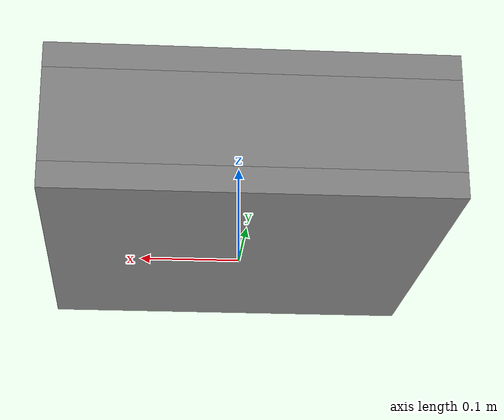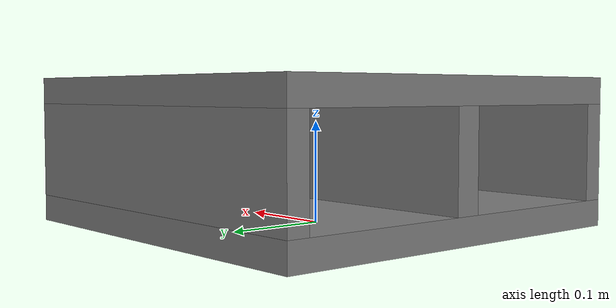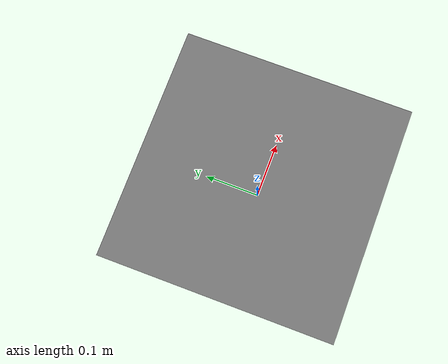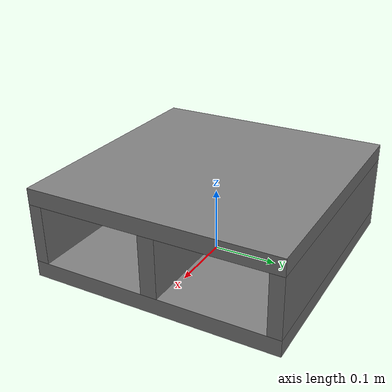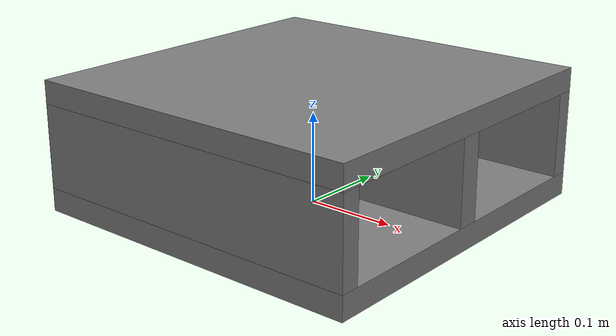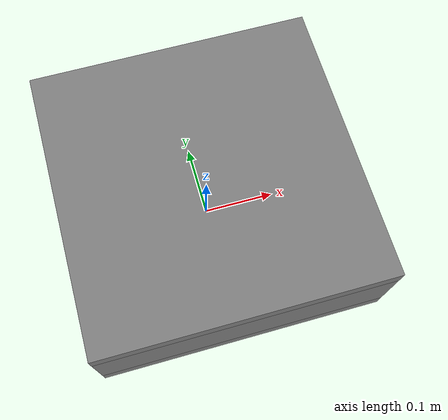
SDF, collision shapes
<?xml version='1.0'?>
<sdf version='1.6'>
  <model name='cinder_block_wide'>
    <link name='link'>
      <pose frame=''>0 0 0 0 -0 0</pose>
      <inertial>
        <pose frame=''>0 0 0.071438 0 -0 0</pose>
        <mass>5</mass>
        <inertia>
          <ixx>0.0681466</ixx>
          <ixy>0</ixy>
          <iyy>0.0681466</iyy>
          <ixz>0</ixz>
          <iyz>0</iyz>
          <izz>0.124808</izz>
        </inertia>
      </inertial>
      <self_collide>0</self_collide>
      <kinematic>0</kinematic>
      <visual name='visual'>
        <geometry>
          <mesh>
            <uri>model://cinder_block_wide/meshes/cinder_block_wide.dae</uri>
          </mesh>
        </geometry>
	<pose frame=''>0 0 0 0 -0 0</pose>
        <cast_shadows>1</cast_shadows>
        <transparency>0</transparency>
	<material>
          <ambient>0 170 255 255</ambient>
          <diffuse>0.5 0.5 0.5 1</diffuse>
          <specular>0 0 0 1</specular>
          <emissive>0 0 0 1</emissive>
          <shader type='vertex'>
            <normal_map>__default__</normal_map>
          </shader>
        </material>
      </visual>
      <collision name='top'>
        <laser_retro>0</laser_retro>
        <max_contacts>10</max_contacts>
        <pose frame=''>0 0 0.130175 0 -0 0</pose>
        <geometry>
          <box>
            <size>0.387354 0.387354 0.0254</size>
          </box>
        </geometry>
        <surface>
          <friction>
            <ode>
              <mu>1</mu>
              <mu2>1</mu2>
              <fdir1>0 0 0</fdir1>
              <slip1>0</slip1>
              <slip2>0</slip2>
            </ode>
            <torsional>
              <coefficient>1</coefficient>
              <patch_radius>0</patch_radius>
              <surface_radius>0</surface_radius>
              <use_patch_radius>1</use_patch_radius>
              <ode>
                <slip>0</slip>
              </ode>
            </torsional>
          </friction>
          <bounce>
            <restitution_coefficient>0</restitution_coefficient>
            <threshold>1e+06</threshold>
          </bounce>
          <contact>
            <collide_without_contact>0</collide_without_contact>
            <collide_without_contact_bitmask>1</collide_without_contact_bitmask>
            <collide_bitmask>1</collide_bitmask>
            <ode>
              <soft_cfm>0</soft_cfm>
              <soft_erp>0.2</soft_erp>
              <kp>1e+13</kp>
              <kd>1</kd>
              <max_vel>0.1</max_vel>
              <min_depth>0.001</min_depth>
            </ode>
            <bullet>
              <split_impulse>1</split_impulse>
              <split_impulse_penetration_threshold>-0.01</split_impulse_penetration_threshold>
              <soft_cfm>0</soft_cfm>
              <soft_erp>0.2</soft_erp>
              <kp>1e+13</kp>
              <kd>1</kd>
            </bullet>
          </contact>
        </surface>
      </collision>
      <collision name='bottom'>
        <laser_retro>0</laser_retro>
        <max_contacts>10</max_contacts>
        <pose frame=''>0 0 0.0127 0 -0 0</pose>
        <geometry>
          <box>
            <size>0.387354 0.387354 0.0254</size>
          </box>
        </geometry>
        <surface>
          <friction>
            <ode>
              <mu>1</mu>
              <mu2>1</mu2>
              <fdir1>0 0 0</fdir1>
              <slip1>0</slip1>
              <slip2>0</slip2>
            </ode>
            <torsional>
              <coefficient>1</coefficient>
              <patch_radius>0</patch_radius>
              <surface_radius>0</surface_radius>
              <use_patch_radius>1</use_patch_radius>
              <ode>
                <slip>0</slip>
              </ode>
            </torsional>
          </friction>
          <bounce>
            <restitution_coefficient>0</restitution_coefficient>
            <threshold>1e+06</threshold>
          </bounce>
          <contact>
            <collide_without_contact>0</collide_without_contact>
            <collide_without_contact_bitmask>1</collide_without_contact_bitmask>
            <collide_bitmask>1</collide_bitmask>
            <ode>
              <soft_cfm>0</soft_cfm>
              <soft_erp>0.2</soft_erp>
              <kp>1e+13</kp>
              <kd>1</kd>
              <max_vel>0.1</max_vel>
              <min_depth>0.001</min_depth>
            </ode>
            <bullet>
              <split_impulse>1</split_impulse>
              <split_impulse_penetration_threshold>-0.01</split_impulse_penetration_threshold>
              <soft_cfm>0</soft_cfm>
              <soft_erp>0.2</soft_erp>
              <kp>1e+13</kp>
              <kd>1</kd>
            </bullet>
          </contact>
        </surface>
      </collision>
      <collision name='left'>
        <laser_retro>0</laser_retro>
        <max_contacts>10</max_contacts>
        <pose frame=''>0 -0.183355 0.071438 0 -0 0</pose>
        <geometry>
          <box>
            <size>0.387354 0.020643 0.092075</size>
          </box>
        </geometry>
        <surface>
          <friction>
            <ode>
              <mu>1</mu>
              <mu2>1</mu2>
              <fdir1>0 0 0</fdir1>
              <slip1>0</slip1>
              <slip2>0</slip2>
            </ode>
            <torsional>
              <coefficient>1</coefficient>
              <patch_radius>0</patch_radius>
              <surface_radius>0</surface_radius>
              <use_patch_radius>1</use_patch_radius>
              <ode>
                <slip>0</slip>
              </ode>
            </torsional>
          </friction>
          <bounce>
            <restitution_coefficient>0</restitution_coefficient>
            <threshold>1e+06</threshold>
          </bounce>
          <contact>
            <collide_without_contact>0</collide_without_contact>
            <collide_without_contact_bitmask>1</collide_without_contact_bitmask>
            <collide_bitmask>1</collide_bitmask>
            <ode>
              <soft_cfm>0</soft_cfm>
              <soft_erp>0.2</soft_erp>
              <kp>1e+13</kp>
              <kd>1</kd>
              <max_vel>0.1</max_vel>
              <min_depth>0.001</min_depth>
            </ode>
            <bullet>
              <split_impulse>1</split_impulse>
              <split_impulse_penetration_threshold>-0.01</split_impulse_penetration_threshold>
              <soft_cfm>0</soft_cfm>
              <soft_erp>0.2</soft_erp>
              <kp>1e+13</kp>
              <kd>1</kd>
            </bullet>
          </contact>
        </surface>
      </collision>
      <collision name='right'>
        <laser_retro>0</laser_retro>
        <max_contacts>10</max_contacts>
        <pose frame=''>0 0.183355 0.071438 0 -0 0</pose>
        <geometry>
          <box>
            <size>0.387354 0.020643 0.092075</size>
          </box>
        </geometry>
        <surface>
          <friction>
            <ode>
              <mu>1</mu>
              <mu2>1</mu2>
              <fdir1>0 0 0</fdir1>
              <slip1>0</slip1>
              <slip2>0</slip2>
            </ode>
            <torsional>
              <coefficient>1</coefficient>
              <patch_radius>0</patch_radius>
              <surface_radius>0</surface_radius>
              <use_patch_radius>1</use_patch_radius>
              <ode>
                <slip>0</slip>
              </ode>
            </torsional>
          </friction>
          <bounce>
            <restitution_coefficient>0</restitution_coefficient>
            <threshold>1e+06</threshold>
          </bounce>
          <contact>
            <collide_without_contact>0</collide_without_contact>
            <collide_without_contact_bitmask>1</collide_without_contact_bitmask>
            <collide_bitmask>1</collide_bitmask>
            <ode>
              <soft_cfm>0</soft_cfm>
              <soft_erp>0.2</soft_erp>
              <kp>1e+13</kp>
              <kd>1</kd>
              <max_vel>0.1</max_vel>
              <min_depth>0.001</min_depth>
            </ode>
            <bullet>
              <split_impulse>1</split_impulse>
              <split_impulse_penetration_threshold>-0.01</split_impulse_penetration_threshold>
              <soft_cfm>0</soft_cfm>
              <soft_erp>0.2</soft_erp>
              <kp>1e+13</kp>
              <kd>1</kd>
            </bullet>
          </contact>
        </surface>
      </collision>
      <collision name='middle'>
        <laser_retro>0</laser_retro>
        <max_contacts>10</max_contacts>
        <pose frame=''>0 0 0.071438 0 -0 0</pose>
        <geometry>
          <box>
            <size>0.387354 0.0254 0.092075</size>
          </box>
        </geometry>
        <surface>
          <friction>
            <ode>
              <mu>1</mu>
              <mu2>1</mu2>
              <fdir1>0 0 0</fdir1>
              <slip1>0</slip1>
              <slip2>0</slip2>
            </ode>
            <torsional>
              <coefficient>1</coefficient>
              <patch_radius>0</patch_radius>
              <surface_radius>0</surface_radius>
              <use_patch_radius>1</use_patch_radius>
              <ode>
                <slip>0</slip>
              </ode>
            </torsional>
          </friction>
          <bounce>
            <restitution_coefficient>0</restitution_coefficient>
            <threshold>1e+06</threshold>
          </bounce>
          <contact>
            <collide_without_contact>0</collide_without_contact>
            <collide_without_contact_bitmask>1</collide_without_contact_bitmask>
            <collide_bitmask>1</collide_bitmask>
            <ode>
              <soft_cfm>0</soft_cfm>
              <soft_erp>0.2</soft_erp>
              <kp>1e+13</kp>
              <kd>1</kd>
              <max_vel>0.1</max_vel>
              <min_depth>0.001</min_depth>
            </ode>
            <bullet>
              <split_impulse>1</split_impulse>
              <split_impulse_penetration_threshold>-0.01</split_impulse_penetration_threshold>
              <soft_cfm>0</soft_cfm>
              <soft_erp>0.2</soft_erp>
              <kp>1e+13</kp>
              <kd>1</kd>
            </bullet>
          </contact>
        </surface>
      </collision>
    </link>
    <static>0</static>
    <allow_auto_disable>1</allow_auto_disable>
  </model>
</sdf>
